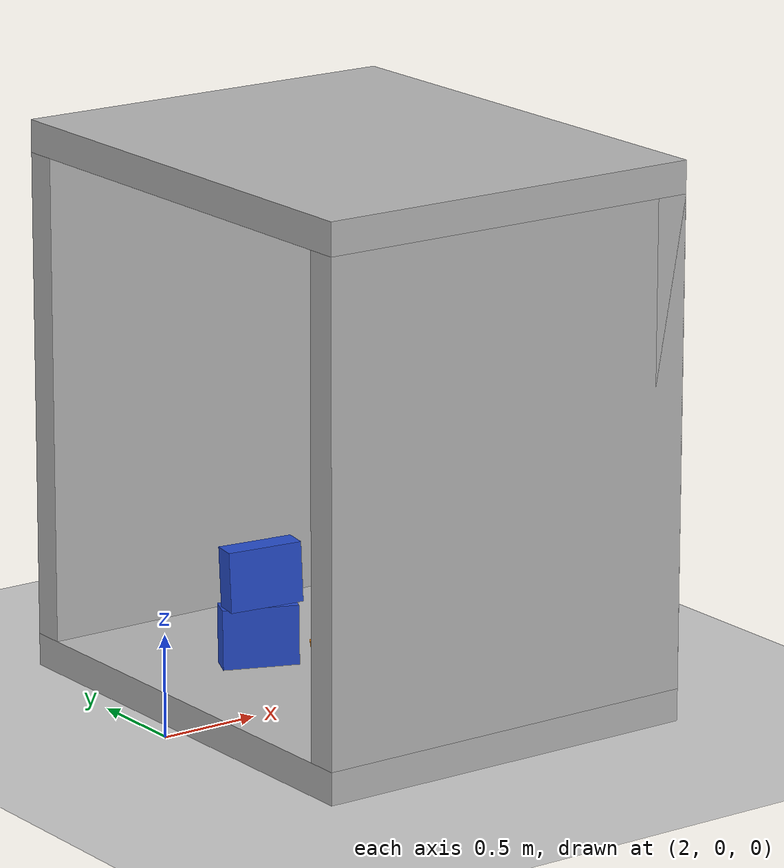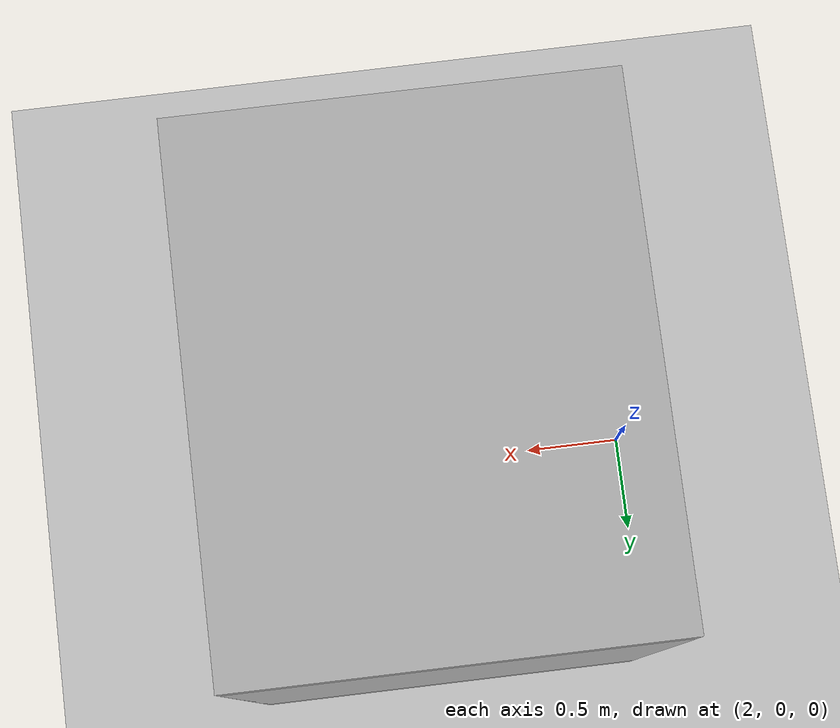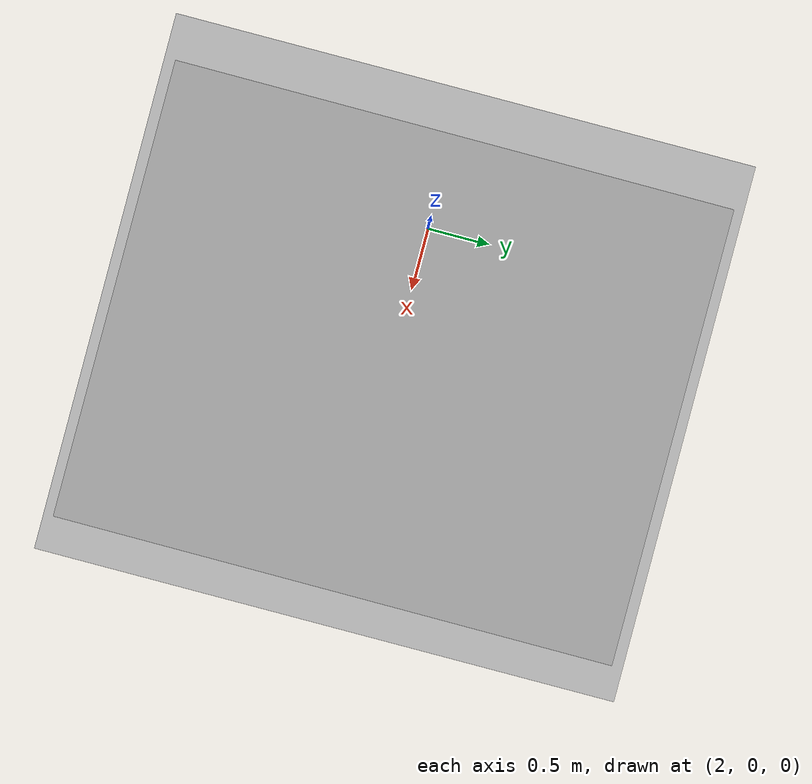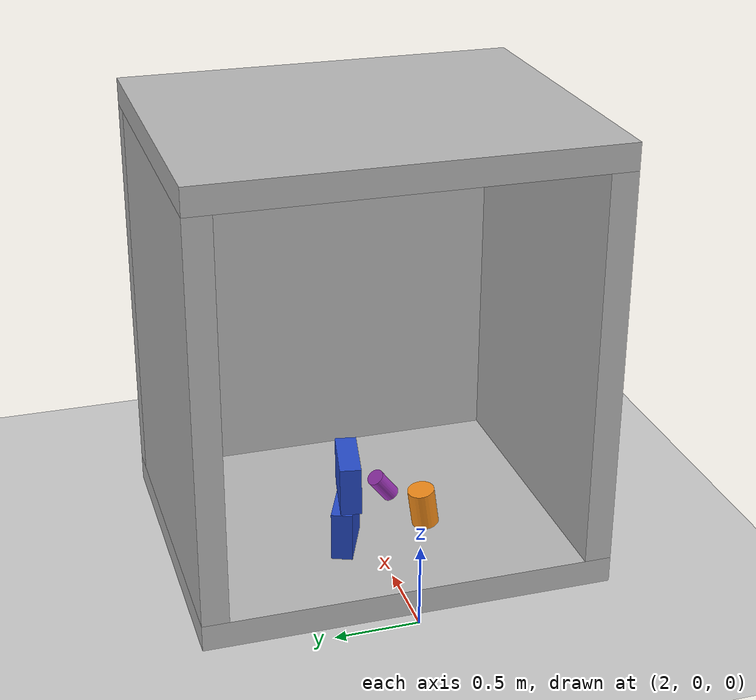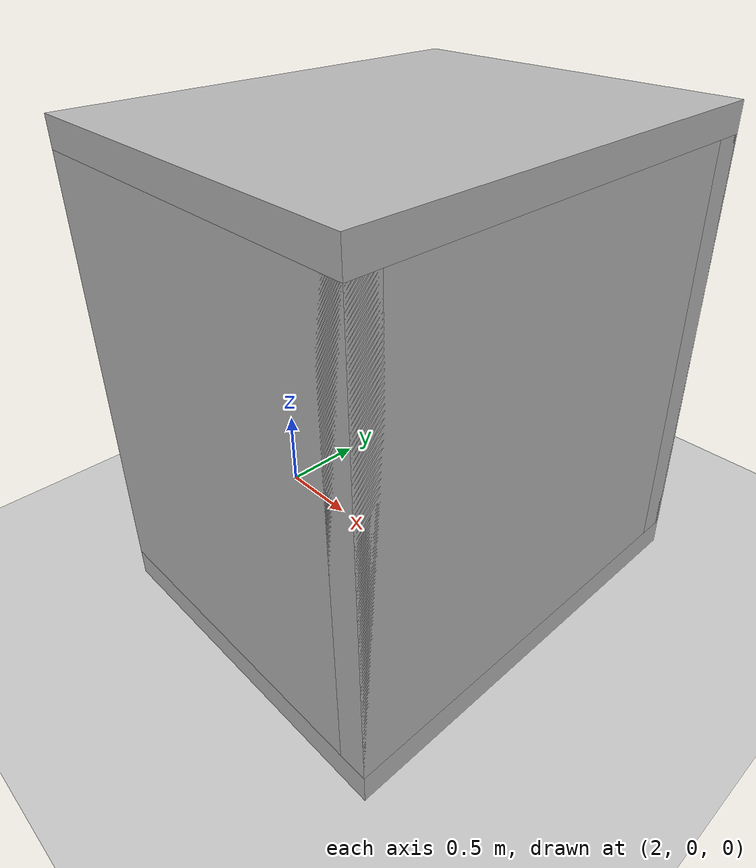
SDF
<sdf version="1.6">
 <world name="default">
  <light name="sun" type="directional">
   <pose>0 0 10 0 -0 0</pose>
   <diffuse>0.8 0.8 0.8 1</diffuse>
   <specular>0.1 0.1 0.1 1</specular>
   <attenuation>
    <range>1000</range>
    <constant>0.9</constant>
    <linear>0.01</linear>
    <quadratic>0.001</quadratic>
   </attenuation>
   <direction>-0.5 0.5 -1</direction>
  </light>
  <model name="ground_plane">
   <static>1</static>
   <link name="link">
    <collision name="collision">
     <geometry><plane><normal>0 0 1</normal><size>100 100</size></plane></geometry>
     <surface><friction><ode><mu>100</mu><mu2>50</mu2></ode></friction></surface>
    </collision>
    <visual name="visual">
     <cast_shadows>0</cast_shadows>
     <geometry><plane><normal>0 0 1</normal><size>100 100</size></plane></geometry>
     <material>
      <script><uri>file://media/materials/scripts/gazebo.material</uri><name>Gazebo/Grey</name></script>
     </material>
    </visual>
   </link>
  </model>
  <physics name="default_physics" default="0" type="ode">
   <real_time_update_rate>0</real_time_update_rate>
   <max_step_size>0.001</max_step_size>
   <real_time_factor>1</real_time_factor>
  </physics>
  <gravity>0 0 -9.8</gravity>
  <magnetic_field>6e-06 2.3e-05 -4.2e-05</magnetic_field>
  <atmosphere type="adiabatic"/>
  <scene><ambient>0.4 0.4 0.4 1</ambient><background>0.7 0.7 0.7 1</background><shadows>1</shadows></scene>
  <spherical_coordinates>
   <surface_model>EARTH_WGS84</surface_model>
   <latitude_deg>0</latitude_deg>
   <longitude_deg>0</longitude_deg>
   <elevation>0</elevation>
   <heading_deg>0</heading_deg>
  </spherical_coordinates>
  <model name="container">
   <link name="container">
    <inertial>
     <pose>0.22439 0 1.64098 0 -0 0</pose>
     <mass>205</mass>
     <inertia>
      <ixx>329.883</ixx>
      <ixy>1.59439e-15</ixy>
      <ixz>12.9249</ixz>
      <iyy>229.817</iyy>
      <iyz>1.16598e-14</iyz>
      <izz>267.609</izz>
     </inertia>
    </inertial>
    <collision name="container_back_collision">
     <pose>0.92 0 1.36 0 -0 0</pose>
     <geometry><box><size>0.16 2.45 2.4</size></box></geometry>
    </collision>
    <collision name="container_bottom_collision_1">
     <pose>0 0 0.08 0 -0 0</pose>
     <geometry><box><size>2 2.45 0.16</size></box></geometry>
    </collision>
    <collision name="container_left_collision_2">
     <pose>0 1.145 1.36 0 -0 0</pose>
     <geometry><box><size>2 0.16 2.4</size></box></geometry>
    </collision>
    <collision name="container_right_collision_3">
     <pose>0 -1.145 1.36 0 -0 0</pose>
     <geometry><box><size>2 0.16 2.4</size></box></geometry>
    </collision>
    <collision name="container_top_collision_4">
     <pose>0 0 2.64 0 -0 0</pose>
     <geometry><box><size>2 2.45 0.16</size></box></geometry>
    </collision>
    <visual name="container_back_visual">
     <pose>0.92 0 1.36 0 -0 0</pose>
     <geometry><box><size>0.16 2.45 2.4</size></box></geometry>
    </visual>
    <visual name="container_bottom_visual_1">
     <pose>0 0 0.08 0 -0 0</pose>
     <geometry><box><size>2 2.45 0.16</size></box></geometry>
    </visual>
    <visual name="container_left_visual_2">
     <pose>0 1.145 1.36 0 -0 0</pose>
     <geometry><box><size>2 0.16 2.4</size></box></geometry>
    </visual>
    <visual name="container_right_visual_3">
     <pose>0 -1.145 1.36 0 -0 0</pose>
     <geometry><box><size>2 0.16 2.4</size></box></geometry>
    </visual>
    <visual name="container_top_visual_4">
     <pose>0 0 2.64 0 -0 0</pose>
     <geometry><box><size>2 2.45 0.16</size></box></geometry>
    </visual>
   </link>
   <pose>3.09 0.008976 -1e-06 -2e-06 1e-06 -0.002566</pose>
  </model>
  <model name="roblog-dhl-box-blue-simple-0-2824">
   <link name="link">
    <inertial>
     <mass>0.25</mass>
     <inertia>
      <ixx>0.00218083</ixx>
      <ixy>0</ixy>
      <ixz>0</ixz>
      <iyy>0.00473308</iyy>
      <iyz>0</iyz>
      <izz>0.00321375</izz>
     </inertia>
    </inertial>
    <collision name="link_collision"><geometry><box><size>0.372 0.126 0.298</size></box></geometry></collision>
    <visual name="link_visual">
     <geometry><box><size>0.372 0.126 0.298</size></box></geometry>
     <material>
      <script><name>Gazebo/Blue</name><uri>file://media/materials/scripts/gazebo.material</uri></script>
     </material>
    </visual>
   </link>
   <pose>2.69378 0.234803 0.311 -0.000271 -0.010744 -0.406419</pose>
  </model>
  <model name="roblog-dhl-box-blue-simple-1-2825">
   <link name="link">
    <inertial>
     <mass>0.25</mass>
     <inertia>
      <ixx>0.00218083</ixx>
      <ixy>0</ixy>
      <ixz>0</ixz>
      <iyy>0.00473308</iyy>
      <iyz>0</iyz>
      <izz>0.00321375</izz>
     </inertia>
    </inertial>
    <collision name="link_collision"><geometry><box><size>0.372 0.126 0.298</size></box></geometry></collision>
    <visual name="link_visual">
     <geometry><box><size>0.372 0.126 0.298</size></box></geometry>
     <material>
      <script><name>Gazebo/Blue</name><uri>file://media/materials/scripts/gazebo.material</uri></script>
     </material>
    </visual>
   </link>
   <pose>2.697 0.216436 0.614198 -0.017532 -0.032894 -0.200322</pose>
  </model>
  <model name="roblog-vanish-detergent-simple-2-2826">
   <link name="link">
    <inertial>
     <mass>0.08</mass>
     <inertia>
      <ixx>0.000324987</ixx>
      <ixy>0</ixy>
      <ixz>0</ixz>
      <iyy>0.000324987</iyy>
      <iyz>0</iyz>
      <izz>0.00011664</izz>
     </inertia>
    </inertial>
    <collision name="link_collision">
     <geometry><cylinder><length>0.2</length><radius>0.054</radius></cylinder></geometry>
    </collision>
    <visual name="link_visual">
     <geometry><cylinder><length>0.2</length><radius>0.054</radius></cylinder></geometry>
     <material>
      <script><name>Gazebo/PurpleGlow</name><uri>file://media/materials/scripts/gazebo.material</uri></script>
     </material>
    </visual>
    <velocity_decay><linear>0.005</linear><angular>0.005</angular></velocity_decay>
   </link>
   <pose>3.09085 -0.121082 0.272021 -0.477386 -0.481501 -0.348853</pose>
  </model>
  <model name="roblog-maisels-barrel-simple-3-2827">
   <link name="link">
    <inertial>
     <mass>0.54</mass>
     <inertia>
      <ixx>0.00354312</ixx>
      <ixy>0</ixy>
      <ixz>0</ixz>
      <iyy>0.00354312</iyy>
      <iyz>0</iyz>
      <izz>0.00181548</izz>
     </inertia>
    </inertial>
    <collision name="link_collision">
     <geometry><cylinder><length>0.242</length><radius>0.082</radius></cylinder></geometry>
    </collision>
    <visual name="link_visual">
     <geometry><cylinder><length>0.242</length><radius>0.082</radius></cylinder></geometry>
     <material>
      <script><name>Gazebo/Orange</name><uri>file://media/materials/scripts/gazebo.material</uri></script>
     </material>
    </visual>
    <velocity_decay><linear>0.005</linear><angular>0.005</angular></velocity_decay>
   </link>
   <pose>2.75574 -0.271944 0.293587 -0.097963 -0.148457 -0.539327</pose>
  </model>
 </world>
</sdf>
